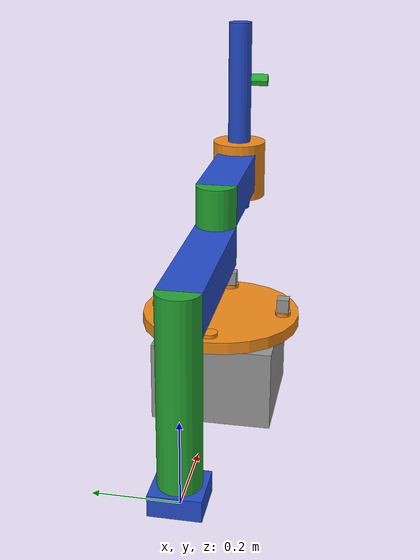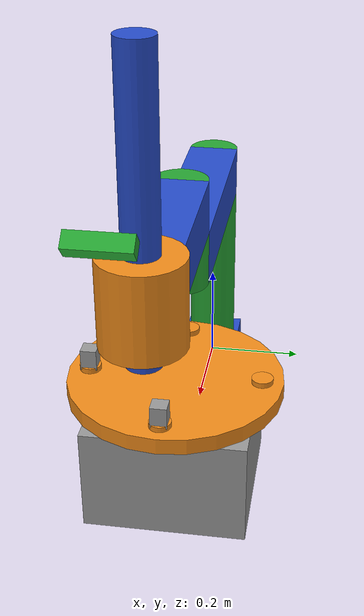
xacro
<?xml version = "1.0"?>
<robot name = "scara" xmlns:xacro="http://www.ros.org/wiki/xacro">

  <!-- Robot arm dimension -->
  <xacro:property name="PI" value="3.1415926535897931"/>

  <!-- Import Rviz colors -->
  <xacro:include filename="$(find scara_description)/urdf/materials.xacro" />
  <!-- Import Gazebo colors and controller plugin -->
  <xacro:include filename="$(find scara_description)/urdf/scara.gazebo" />

  <!-- Used for fixing robot to Gazebo 'base_link' -->
  <link name="world"/>

  <!-- Base Link -->
  <link name = "base_link">
    <visual>
      <geometry>
        <box size = "0.12 0.12 0.05"/>
      </geometry>
      <material name = "blue"/>
      <origin xyz = "0 0 0.025"/>
    </visual>
    <inertial>
      <mass value="1" />
      <origin xyz="0 0 0.025" rpy="0 0 0" />
      <inertia ixx="1" ixy="0" ixz="0" iyy="1" iyz="0" izz="1" />
    </inertial>
    <collision>
      <geometry>
        <box size = "0.12 0.12 0.05"/>
      </geometry>
      <material name = "blue"/>
      <origin xyz = "0 0 0.025"/>
    </collision>
  </link>

  <joint name="base2world" type="fixed">
    <parent link="world"/>
    <child link="base_link"/>
  </joint>

  <!-- revolute1 1 -->
  <link name = "revolute1">
    <visual>
      <geometry>
        <cylinder length = "0.45" radius = "0.05"/>
      </geometry>
      <material name = "green"/>
      <origin xyz = "0 0 0.225"/>
    </visual>
    <inertial>
      <mass value="0.5" />
      <origin xyz="0 0 0.05" rpy="0 0 0" />
      <inertia ixx="0.5" ixy="0" ixz="0" iyy="0.5" iyz="0" izz="0.5" />
    </inertial>
    <collision>
      <geometry>
        <cylinder length = "0.45" radius = "0.05"/>
      </geometry>
      <material name = "green"/>
      <origin xyz = "0 0 0.225"/>
    </collision>
  </link>

  <joint name = "joint1" type="continuous">
    <parent link = "base_link"/>
    <child link = "revolute1"/>
    <origin xyz = "0 0 0.05"/>
    <limit effort="1000.0" lower="-1.57" upper="1.57" velocity="0.5"/>
    <axis xyz = "0 0 1"/>
    <dynamics damping="0.2" friction="0.1" />
  </joint>

  <!-- link 1 -->
  <link name = "link1">
    <visual>
      <geometry>
        <box size = "0.1 0.1 0.425"/>
      </geometry>
      <material name = "blue"/>
      <origin rpy = "0 1.571 0" xyz = "0.2125 0 0"/>
    </visual>
    <inertial>
      <mass value="0.5" />
      <origin xyz="0.2125 0 0" rpy="0 0 0" />
      <inertia ixx="0.5" ixy="0" ixz="0" iyy="0.5" iyz="0" izz="0.5" />
    </inertial>
    <collision>
      <geometry>
        <box size = "0.1 0.1 0.425"/>
      </geometry>
      <material name = "blue"/>
      <origin rpy = "0 1.571 0" xyz = "0.2125 0 0"/>
    </collision>
  </link>

  <joint name = "link12revolute1" type="fixed">
    <parent link = "revolute1"/>
    <child link = "link1"/>
    <origin xyz = "0 0 0.4"/>
  </joint>

  <!-- revolute 2 -->
  <link name = "revolute2">
    <visual>
      <geometry>
        <cylinder length = "0.2" radius = "0.05"/>
      </geometry>
      <material name = "green"/>
      <origin rpy = "0 0 0" xyz = "0 0 0"/>
    </visual>
    <inertial>
      <mass value="0.5" />
      <origin xyz="0 0 0" rpy="0 0 0" />
      v<inertia ixx="0.5" ixy="0" ixz="0" iyy="0.5" iyz="0" izz="0.5" />
    </inertial>
    <collision>
      <geometry>
        <cylinder length = "0.2" radius = "0.05"/>
      </geometry>
      <material name = "green"/>
      <origin rpy = "0 0 0" xyz = "0 0 0"/>
    </collision>
  </link>

  <joint name = "joint2" type="continuous">
    <parent link = "link1"/>
    <child link = "revolute2"/>
    <origin xyz = "0.425 0 0.05"/>
    <limit effort="1000.0" lower="-1.57" upper="1.57" velocity="0.5"/>
    <axis xyz = "0 0 1"/>
    <dynamics damping="0.2" friction="0.1" />
  </joint>

  <!-- link 2 -->
  <link name = "link2">
    <visual>
      <geometry>
        <box size = "0.1 0.1 0.345"/>
      </geometry>
      <material name = "blue"/>
      <origin rpy = "0 1.571 0" xyz = "0.1725 0 0"/>
    </visual>
    <inertial>
      <mass value="0.5" />
      <origin xyz="0.1725 0 0" rpy="0 0 0" />
      <inertia ixx="0.5" ixy="0" ixz="0" iyy="0.5" iyz="0" izz="0.5" />
    </inertial>
    <collision>
      <geometry>
        <box size = "0.1 0.1 0.345"/>
      </geometry>
      <material name = "blue"/>
      <origin rpy = "0 1.571 0" xyz = "0.1725 0 0"/>
    </collision>
  </link>

  <joint name = "link22revolute2" type="fixed">
    <parent link = "revolute2"/>
    <child link = "link2"/>
    <origin xyz = "0 0 0.05"/>
  </joint>

  <!-- prismatic 3 -->
  <link name = "prismatic3">
    <visual>
      <geometry>
        <cylinder length = "0.15" radius = "0.07"/>
      </geometry>
      <material name = "orange"/>
      <origin xyz = "0 0 0"/>
    </visual>
    <inertial>
      <mass value="0.5" />
      <origin xyz="0 0 0" rpy="0 0 0" />
      <inertia ixx="0.5" ixy="0" ixz="0" iyy="0.5" iyz="0" izz="0.5" />
    </inertial>
    <collision>
      <geometry>
        <cylinder length = "0.15" radius = "0.07"/>
      </geometry>
      <material name = "orange"/>
      <origin xyz = "0 0 0"/>
    </collision>
  </link>

  <joint name = "prismatic32link2" type="fixed">
    <parent link = "link2"/>
    <child link = "prismatic3"/>
    <origin rpy = "3.14 0 0" xyz = "0.345 0 0"/>
  </joint>

  <!-- link 3 -->
  <link name = "link3">
    <visual>
      <geometry>
        <cylinder length = "0.5" radius = "0.03"/>
      </geometry>
      <material name = "blue"/>
      <origin xyz = "0 0 -0.25"/>
    </visual>
    <inertial>
      <mass value="0.2" />
      <origin xyz="0 0 -0.25" rpy="0 0 0" />
      <inertia ixx="0.2" ixy="0" ixz="0" iyy="0.2" iyz="0" izz="0.2" />
    </inertial>
    <collision>
      <geometry>
        <cylinder length = "0.5" radius = "0.03"/>
      </geometry>
      <material name = "blue"/>
      <origin xyz = "0 0 -0.25"/>
    </collision>
  </link>

  <joint name = "joint3" type="prismatic">
    <parent link = "prismatic3"/>
    <child link = "link3"/>
    <origin xyz = "0 0 0.11"/>
    <limit effort="1000" lower="-0.00001" upper="0.3" velocity="0.1"/>
    <axis xyz = "0 0 1"/>
    <dynamics damping="0.4" friction="5" />
  </joint>

  <!-- Controller -->
  <transmission name="tran1">
    <type>transmission_interface/SimpleTransmission</type>
    <joint name="joint1">
      <hardwareInterface>hardware_interface/EffortJointInterface</hardwareInterface>
    </joint>
    <actuator name="motor1">
      <hardwareInterface>hardware_interface/EffortJointInterface</hardwareInterface>
      <mechanicalReduction>1</mechanicalReduction>
    </actuator>
  </transmission>

  <transmission name="tran2">
    <type>transmission_interface/SimpleTransmission</type>
    <joint name="joint2">
      <hardwareInterface>hardware_interface/EffortJointInterface</hardwareInterface>
    </joint>
    <actuator name="motor2">
      <hardwareInterface>hardware_interface/EffortJointInterface</hardwareInterface>
      <mechanicalReduction>1</mechanicalReduction>
    </actuator>
  </transmission>

  <transmission name="tran3">
    <type>transmission_interface/SimpleTransmission</type>
    <joint name="joint3">
      <hardwareInterface>hardware_interface/EffortJointInterface</hardwareInterface>
    </joint>
    <actuator name="motor3">
      <hardwareInterface>hardware_interface/EffortJointInterface</hardwareInterface>
      <mechanicalReduction>1</mechanicalReduction>
    </actuator>
  </transmission>

    <!-- teble_link 1 -->
  <link name = "tlink1">
    <visual>
      <geometry>
        <box size = "0.3 0.3 0.2"/>
      </geometry>
      <material name = "grey"/>
      <origin xyz = "0 0 0.1"/>
    </visual>
    <inertial>
      <mass value="2" />
      <origin xyz="0 0 0.025" rpy="0 0 0" />
      <inertia ixx="1" ixy="0" ixz="0" iyy="1" iyz="0" izz="1" />
    </inertial>
    <collision>
      <geometry>
        <box size = "0.3 0.3 0.2"/>
      </geometry>
      <material name = "grey"/>
      <origin xyz = "0 0 0.1"/>
    </collision>
  </link>

  <joint name="table2world" type="fixed">
    <parent link="world"/>
    <child link="tlink1"/>
    <origin xyz = "0.5 0 0"/>
  </joint>

    <!-- teble_link 2 -->
  <link name = "tlink2">
    <visual>
      <geometry>
        <cylinder length = "0.03" radius = "0.2"/>
      </geometry>
      <material name = "orange"/>
      <origin xyz = "0 0 0"/>
    </visual>
    <inertial>
      <mass value="1.0" />
      <origin xyz="0 0 -0.25" rpy="0 0 0" />
      <inertia ixx="0.2" ixy="0" ixz="0" iyy="0.2" iyz="0" izz="0.2" />
    </inertial>
    <collision>
      <geometry>
        <cylinder length = "0.03" radius = "0.2"/>
      </geometry>
      <material name = "orange"/>
      <origin xyz = "0 0 0"/>
    </collision>
  </link>

  <joint name = "table_joint" type="continuous">
    <parent link = "tlink1"/>
    <child link = "tlink2"/>
    <origin xyz = "0 0 0.23"/>
    <limit effort="100.0" velocity="100"/>
    <axis xyz = "0 0 1"/>
    <dynamics damping="0.2" friction="0.1" />
  </joint>

  <transmission name="tran4">
    <type>transmission_interface/SimpleTransmission</type>
    <joint name="table_joint">
      <hardwareInterface>hardware_interface/EffortJointInterface</hardwareInterface>
    </joint>
    <actuator name="motor4">
      <hardwareInterface>hardware_interface/EffortJointInterface</hardwareInterface>
      <mechanicalReduction>1</mechanicalReduction>
    </actuator>
  </transmission>

  <link name = "table_pad">
    <visual>
      <geometry>
        <cylinder length = "0.01" radius = "0.02"/>
      </geometry>
      <material name = "orange"/>
      <origin xyz = "0 0 0"/>
    </visual>
    <inertial>
      <mass value="0.2" />
      <origin xyz="0 0 -0.25" rpy="0 0 0" />
      <inertia ixx="0.2" ixy="0" ixz="0" iyy="0.2" iyz="0" izz="0.2" />
    </inertial>
    <collision>
      <geometry>
        <cylinder length = "0.01" radius = "0.02"/>
      </geometry>
      <material name = "orange"/>
      <origin xyz = "0 0 0"/>
    </collision>
  </link>

  <joint name="pad2table" type="fixed">
    <parent link="tlink2"/>
    <child link="table_pad"/>
    <origin xyz = "0.16 0 0.02"/>
  </joint>

  <link name = "table_pad1">
    <visual>
      <geometry>
        <cylinder length = "0.01" radius = "0.02"/>
      </geometry>
      <material name = "orange"/>
      <origin xyz = "0 0 0"/>
    </visual>
    <inertial>
      <mass value="0.2" />
      <origin xyz="0 0 -0.25" rpy="0 0 0" />
      <inertia ixx="0.2" ixy="0" ixz="0" iyy="0.2" iyz="0" izz="0.2" />
    </inertial>
    <collision>
      <geometry>
        <cylinder length = "0.01" radius = "0.02"/>
      </geometry>
      <material name = "orange"/>
      <origin xyz = "0 0 0"/>
    </collision>
  </link>

  <joint name="pad12table" type="fixed">
    <parent link="tlink2"/>
    <child link="table_pad1"/>
    <origin xyz = "-0.16 0 0.02"/>
  </joint>

  <link name = "table_pad2">
    <visual>
      <geometry>
        <cylinder length = "0.01" radius = "0.02"/>
      </geometry>
      <material name = "orange"/>
      <origin xyz = "0 0 0"/>
    </visual>
    <inertial>
      <mass value="0.2" />
      <origin xyz="0 0 -0.25" rpy="0 0 0" />
      <inertia ixx="0.2" ixy="0" ixz="0" iyy="0.2" iyz="0" izz="0.2" />
    </inertial>
    <collision>
      <geometry>
        <cylinder length = "0.01" radius = "0.02"/>
      </geometry>
      <material name = "orange"/>
      <origin xyz = "0 0 0"/>
    </collision>
  </link>

  <joint name="pad22table" type="fixed">
    <parent link="tlink2"/>
    <child link="table_pad2"/>
    <origin xyz = "0 0.16 0.02"/>
  </joint>

  <link name = "table_pad3">
    <visual>
      <geometry>
        <cylinder length = "0.01" radius = "0.02"/>
      </geometry>
      <material name = "orange"/>
      <origin xyz = "0 0 0"/>
    </visual>
    <inertial>
      <mass value="0.2" />
      <origin xyz="0 0 -0.25" rpy="0 0 0" />
      <inertia ixx="0.2" ixy="0" ixz="0" iyy="0.2" iyz="0" izz="0.2" />
    </inertial>
    <collision>
      <geometry>
        <cylinder length = "0.01" radius = "0.02"/>
      </geometry>
      <material name = "orange"/>
      <origin xyz = "0 0 0"/>
    </collision>
  </link>

  <joint name="pad32table" type="fixed">
    <parent link="tlink2"/>
    <child link="table_pad3"/>
    <origin xyz = "0 -0.16 0.02"/>
  </joint>

  <link name = "object_pad3">
    <visual>
      <geometry>
        <box size = "0.03 0.03 0.04"/>
      </geometry>
      <material name = "grey"/>
      <origin xyz = "0 0 0"/>
    </visual>
    <inertial>
      <mass value="2" />
      <origin xyz="0 0 0.025" rpy="0 0 0" />
      <inertia ixx="1" ixy="0" ixz="0" iyy="1" iyz="0" izz="1" />
    </inertial>
    <collision>
      <geometry>
        <box size = "0.03 0.03 0.04"/>
      </geometry>
      <material name = "grey"/>
      <origin xyz = "0 0 0"/>
    </collision>
  </link>

  <joint name="pad32object" type="fixed">
    <parent link="table_pad3"/>
    <child link="object_pad3"/>
    <origin xyz = "0 0.0 0.02"/>
  </joint>

    <link name = "object_pad4">
    <visual>
      <geometry>
        <box size = "0.03 0.03 0.04"/>
      </geometry>
      <material name = "grey"/>
      <origin xyz = "0 0 0"/>
    </visual>
    <inertial>
      <mass value="2" />
      <origin xyz="0 0 0.025" rpy="0 0 0" />
      <inertia ixx="1" ixy="0" ixz="0" iyy="1" iyz="0" izz="1" />
    </inertial>
    <collision>
      <geometry>
        <box size = "0.03 0.03 0.04"/>
      </geometry>
      <material name = "grey"/>
      <origin xyz = "0 0 0"/>
    </collision>
  </link>

  <joint name="pad42object" type="fixed">
    <parent link="table_pad"/>
    <child link="object_pad4"/>
    <origin xyz = "0 0.0 0.02"/>
  </joint> -->

  <!-- camera link -->
  <xacro:property name="cameraHeight" value="0.025"/>
  <xacro:property name="cameraLength" value="0.025"/>
  <xacro:property name="cameraWidth" value="0.09"/>
  <xacro:property name="cameraMass" value="0.1"/>

  <link name="camera">
    <collision>
      <origin xyz="0 0 0" rpy="0 0 0"/>
      <geometry>
        <box size="${cameraLength} ${cameraWidth} ${cameraHeight}"/>
      </geometry>
    </collision>

    <visual>
      <origin xyz="0 0 0" rpy="0 0 0"/>
      <geometry>
        <box size="${cameraLength} ${cameraWidth} ${cameraHeight}"/>
      </geometry>
      <material name="green"/>
    </visual>

    <inertial>
      <mass value="${cameraMass}" />
      <origin xyz="0 0 0" rpy="0 0 0"/>
      <box_inertia m="${cameraMass}" x="${cameraLength}" y="${cameraWidth}" z="${cameraHeight}" />
      <inertia ixx="1e-6" ixy="0" ixz="0" iyy="1e-6" iyz="0" izz="1e-6" />
    </inertial>
  </link>

  <joint name="camera_joint" type="fixed">
    <origin xyz="1.0 0 0.75" rpy="3.14 2.3 0"/>
    <parent link="world"/>
    <child link="camera"/>
  </joint>

</robot>
